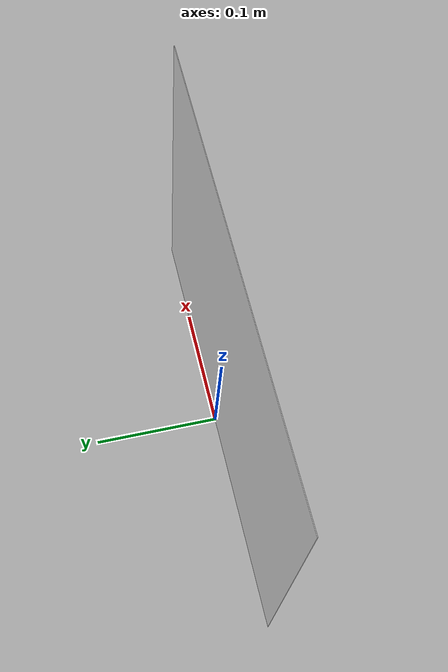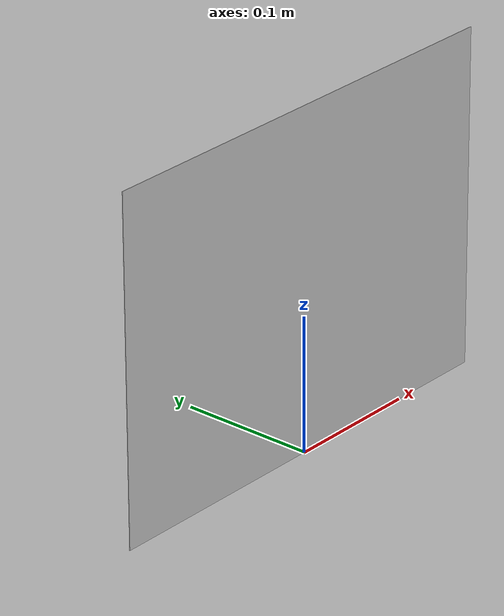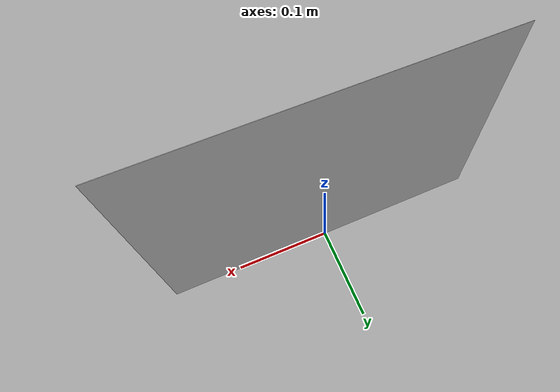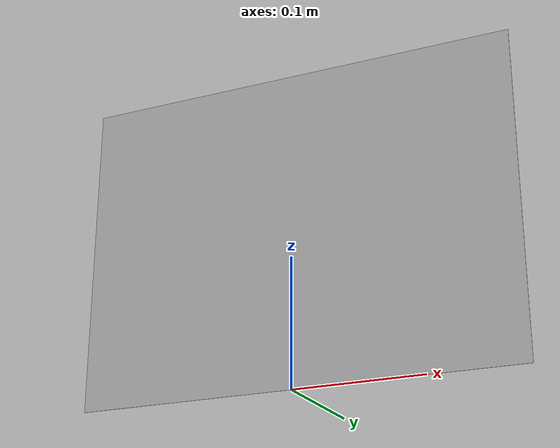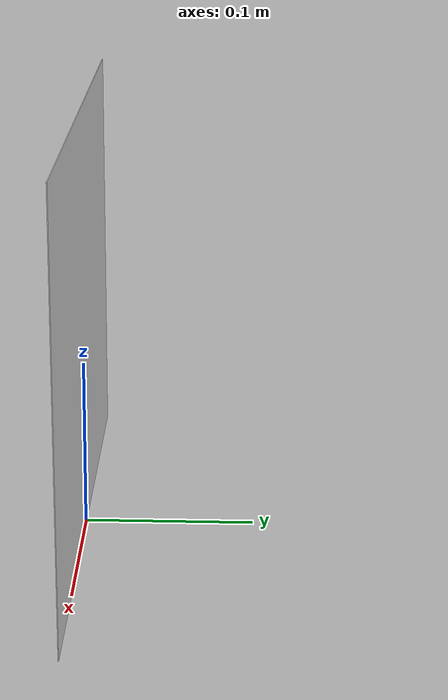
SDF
<?xml version="1.0" ?>
<sdf version="1.5">
  <model name="cp1">
    <static>true</static>
    <link name="link">
      <visual name="visual">
        <geometry>
          <mesh>
            <uri>model://cp1/meshes/cp.dae</uri>
            <scale>0.492857142857 0.0125 0.5</scale>
          </mesh>
        </geometry>
      </visual>
      <collision name="collision">
        <pose>0 0 0.125 0 0 0</pose>
        <geometry>
          <box>
            <size>0.345 0.0005 0.25</size>
          </box>
        </geometry>
      </collision>
    </link>
  </model>
</sdf>
